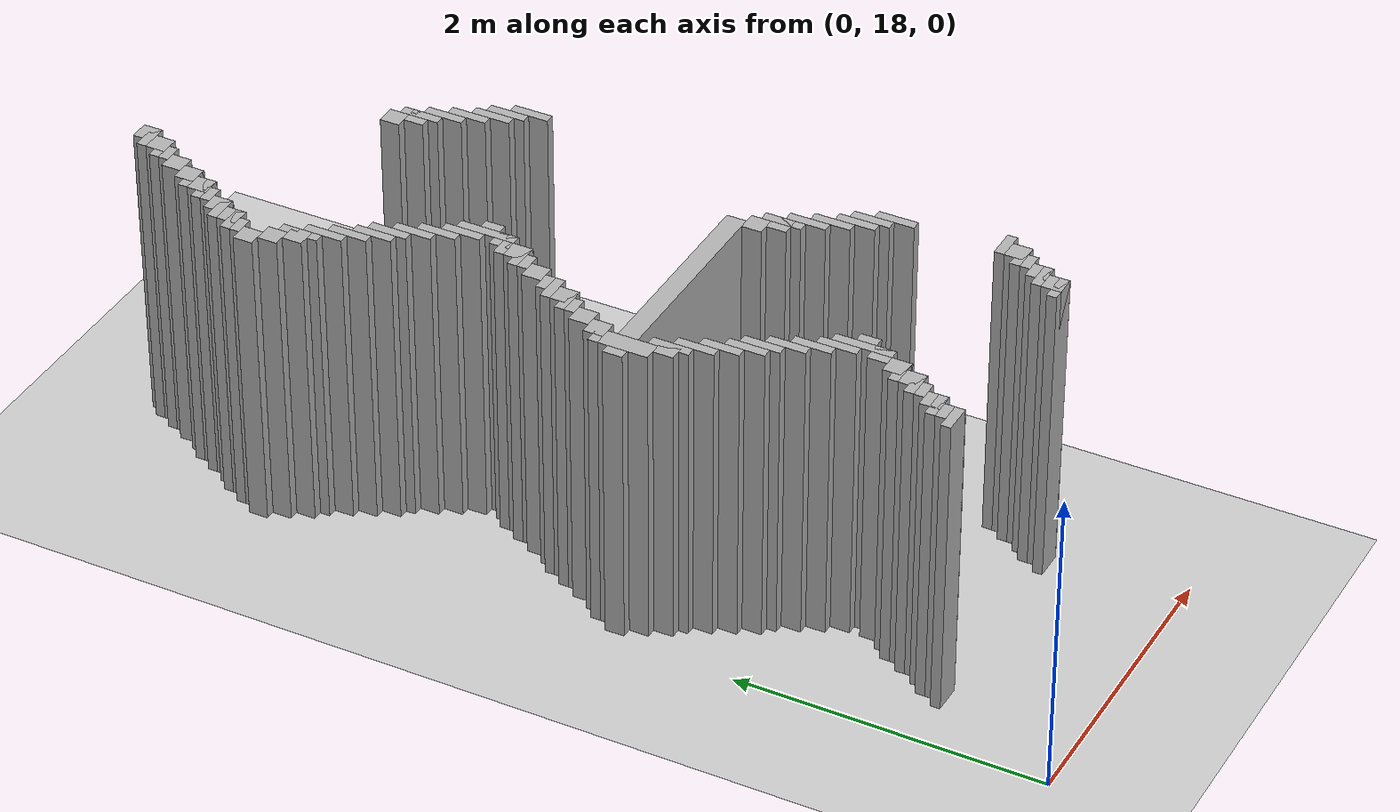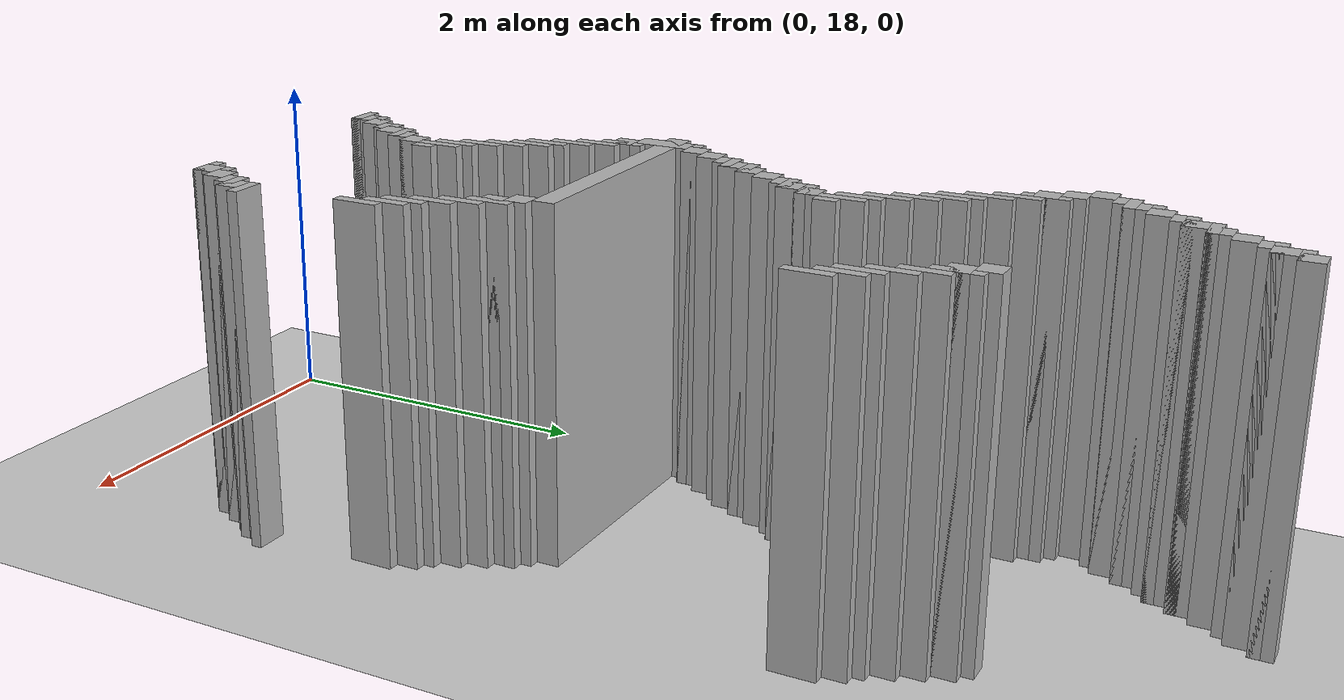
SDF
<sdf version="1.6">
 <world name="slam_world">
  <model name="ground_plane">
   <static>true</static>
   <link name="link">
    <collision name="collision">
     <geometry><plane><normal>0 0 1</normal><size>100 100</size></plane></geometry>
    </collision>
    <visual name="visual">
     <geometry><plane><normal>0 0 1</normal><size>100 100</size></plane></geometry>
     <material>
      <ambient>0.8 0.8 0.8 1</ambient>
      <diffuse>0.8 0.8 0.8 1</diffuse>
      <specular>0.8 0.8 0.8 1</specular>
     </material>
    </visual>
   </link>
  </model>
  <model name="wall_2">
   <static>true</static>
   <pose>0.7659574468085106 24.319148936170212 1.0 0 0 0</pose>
   <link name="link">
    <collision name="collision">
     <geometry><box><size>0.1276595744680851 0.1276595744680851 2.0</size></box></geometry>
    </collision>
    <visual name="visual">
     <geometry><box><size>0.1276595744680851 0.1276595744680851 2.0</size></box></geometry>
     <material><ambient>0.5 0.5 0.5 1</ambient><diffuse>0.7 0.7 0.7 1</diffuse></material>
    </visual>
   </link>
  </model>
  <model name="wall_7">
   <static>true</static>
   <pose>0.7340425531914893 24.28723404255319 1.0 0 0 0</pose>
   <link name="link">
    <collision name="collision">
     <geometry><box><size>0.19148936170212766 0.06382978723404255 2.0</size></box></geometry>
    </collision>
    <visual name="visual">
     <geometry><box><size>0.19148936170212766 0.06382978723404255 2.0</size></box></geometry>
     <material><ambient>0.5 0.5 0.5 1</ambient><diffuse>0.7 0.7 0.7 1</diffuse></material>
    </visual>
   </link>
  </model>
  <model name="wall_12">
   <static>true</static>
   <pose>0.702127659574468 24.191489361702125 1.0 0 0 0</pose>
   <link name="link">
    <collision name="collision">
     <geometry><box><size>0.1276595744680851 0.1276595744680851 2.0</size></box></geometry>
    </collision>
    <visual name="visual">
     <geometry><box><size>0.1276595744680851 0.1276595744680851 2.0</size></box></geometry>
     <material><ambient>0.5 0.5 0.5 1</ambient><diffuse>0.7 0.7 0.7 1</diffuse></material>
    </visual>
   </link>
  </model>
  <model name="wall_17">
   <static>true</static>
   <pose>0.6702127659574467 24.159574468085104 1.0 0 0 0</pose>
   <link name="link">
    <collision name="collision">
     <geometry><box><size>0.19148936170212766 0.06382978723404255 2.0</size></box></geometry>
    </collision>
    <visual name="visual">
     <geometry><box><size>0.19148936170212766 0.06382978723404255 2.0</size></box></geometry>
     <material><ambient>0.5 0.5 0.5 1</ambient><diffuse>0.7 0.7 0.7 1</diffuse></material>
    </visual>
   </link>
  </model>
  <model name="wall_22">
   <static>true</static>
   <pose>0.6382978723404255 24.095744680851062 1.0 0 0 0</pose>
   <link name="link">
    <collision name="collision">
     <geometry><box><size>0.1276595744680851 0.06382978723404255 2.0</size></box></geometry>
    </collision>
    <visual name="visual">
     <geometry><box><size>0.1276595744680851 0.06382978723404255 2.0</size></box></geometry>
     <material><ambient>0.5 0.5 0.5 1</ambient><diffuse>0.7 0.7 0.7 1</diffuse></material>
    </visual>
   </link>
  </model>
  <model name="wall_26">
   <static>true</static>
   <pose>0.5744680851063829 23.999999999999996 1.0 0 0 0</pose>
   <link name="link">
    <collision name="collision">
     <geometry><box><size>0.1276595744680851 0.1276595744680851 2.0</size></box></geometry>
    </collision>
    <visual name="visual">
     <geometry><box><size>0.1276595744680851 0.1276595744680851 2.0</size></box></geometry>
     <material><ambient>0.5 0.5 0.5 1</ambient><diffuse>0.7 0.7 0.7 1</diffuse></material>
    </visual>
   </link>
  </model>
  <model name="wall_31">
   <static>true</static>
   <pose>0.5106382978723404 23.872340425531913 1.0 0 0 0</pose>
   <link name="link">
    <collision name="collision">
     <geometry><box><size>0.1276595744680851 0.1276595744680851 2.0</size></box></geometry>
    </collision>
    <visual name="visual">
     <geometry><box><size>0.1276595744680851 0.1276595744680851 2.0</size></box></geometry>
     <material><ambient>0.5 0.5 0.5 1</ambient><diffuse>0.7 0.7 0.7 1</diffuse></material>
    </visual>
   </link>
  </model>
  <model name="wall_36">
   <static>true</static>
   <pose>0.4787234042553191 23.840425531914892 1.0 0 0 0</pose>
   <link name="link">
    <collision name="collision">
     <geometry><box><size>0.19148936170212766 0.06382978723404255 2.0</size></box></geometry>
    </collision>
    <visual name="visual">
     <geometry><box><size>0.19148936170212766 0.06382978723404255 2.0</size></box></geometry>
     <material><ambient>0.5 0.5 0.5 1</ambient><diffuse>0.7 0.7 0.7 1</diffuse></material>
    </visual>
   </link>
  </model>
  <model name="wall_41">
   <static>true</static>
   <pose>0.44680851063829785 23.744680851063826 1.0 0 0 0</pose>
   <link name="link">
    <collision name="collision">
     <geometry><box><size>0.1276595744680851 0.1276595744680851 2.0</size></box></geometry>
    </collision>
    <visual name="visual">
     <geometry><box><size>0.1276595744680851 0.1276595744680851 2.0</size></box></geometry>
     <material><ambient>0.5 0.5 0.5 1</ambient><diffuse>0.7 0.7 0.7 1</diffuse></material>
    </visual>
   </link>
  </model>
  <model name="wall_45">
   <static>true</static>
   <pose>0.4148936170212766 23.712765957446805 1.0 0 0 0</pose>
   <link name="link">
    <collision name="collision">
     <geometry><box><size>0.19148936170212766 0.06382978723404255 2.0</size></box></geometry>
    </collision>
    <visual name="visual">
     <geometry><box><size>0.19148936170212766 0.06382978723404255 2.0</size></box></geometry>
     <material><ambient>0.5 0.5 0.5 1</ambient><diffuse>0.7 0.7 0.7 1</diffuse></material>
    </visual>
   </link>
  </model>
  <model name="wall_50">
   <static>true</static>
   <pose>0.3829787234042553 23.648936170212764 1.0 0 0 0</pose>
   <link name="link">
    <collision name="collision">
     <geometry><box><size>0.1276595744680851 0.06382978723404255 2.0</size></box></geometry>
    </collision>
    <visual name="visual">
     <geometry><box><size>0.1276595744680851 0.06382978723404255 2.0</size></box></geometry>
     <material><ambient>0.5 0.5 0.5 1</ambient><diffuse>0.7 0.7 0.7 1</diffuse></material>
    </visual>
   </link>
  </model>
  <model name="wall_54">
   <static>true</static>
   <pose>0.3191489361702127 23.5531914893617 1.0 0 0 0</pose>
   <link name="link">
    <collision name="collision">
     <geometry><box><size>0.1276595744680851 0.1276595744680851 2.0</size></box></geometry>
    </collision>
    <visual name="visual">
     <geometry><box><size>0.1276595744680851 0.1276595744680851 2.0</size></box></geometry>
     <material><ambient>0.5 0.5 0.5 1</ambient><diffuse>0.7 0.7 0.7 1</diffuse></material>
    </visual>
   </link>
  </model>
  <model name="wall_59">
   <static>true</static>
   <pose>0.28723404255319146 23.52127659574468 1.0 0 0 0</pose>
   <link name="link">
    <collision name="collision">
     <geometry><box><size>0.19148936170212766 0.06382978723404255 2.0</size></box></geometry>
    </collision>
    <visual name="visual">
     <geometry><box><size>0.19148936170212766 0.06382978723404255 2.0</size></box></geometry>
     <material><ambient>0.5 0.5 0.5 1</ambient><diffuse>0.7 0.7 0.7 1</diffuse></material>
    </visual>
   </link>
  </model>
  <model name="wall_64">
   <static>true</static>
   <pose>0.2553191489361702 23.425531914893615 1.0 0 0 0</pose>
   <link name="link">
    <collision name="collision">
     <geometry><box><size>0.1276595744680851 0.1276595744680851 2.0</size></box></geometry>
    </collision>
    <visual name="visual">
     <geometry><box><size>0.1276595744680851 0.1276595744680851 2.0</size></box></geometry>
     <material><ambient>0.5 0.5 0.5 1</ambient><diffuse>0.7 0.7 0.7 1</diffuse></material>
    </visual>
   </link>
  </model>
  <model name="wall_68">
   <static>true</static>
   <pose>0.22340425531914893 23.393617021276594 1.0 0 0 0</pose>
   <link name="link">
    <collision name="collision">
     <geometry><box><size>0.19148936170212766 0.06382978723404255 2.0</size></box></geometry>
    </collision>
    <visual name="visual">
     <geometry><box><size>0.19148936170212766 0.06382978723404255 2.0</size></box></geometry>
     <material><ambient>0.5 0.5 0.5 1</ambient><diffuse>0.7 0.7 0.7 1</diffuse></material>
    </visual>
   </link>
  </model>
  <model name="wall_73">
   <static>true</static>
   <pose>0.19148936170212766 23.329787234042552 1.0 0 0 0</pose>
   <link name="link">
    <collision name="collision">
     <geometry><box><size>0.1276595744680851 0.06382978723404255 2.0</size></box></geometry>
    </collision>
    <visual name="visual">
     <geometry><box><size>0.1276595744680851 0.06382978723404255 2.0</size></box></geometry>
     <material><ambient>0.5 0.5 0.5 1</ambient><diffuse>0.7 0.7 0.7 1</diffuse></material>
    </visual>
   </link>
  </model>
  <model name="wall_77">
   <static>true</static>
   <pose>0.1276595744680851 23.234042553191486 1.0 0 0 0</pose>
   <link name="link">
    <collision name="collision">
     <geometry><box><size>0.1276595744680851 0.1276595744680851 2.0</size></box></geometry>
    </collision>
    <visual name="visual">
     <geometry><box><size>0.1276595744680851 0.1276595744680851 2.0</size></box></geometry>
     <material><ambient>0.5 0.5 0.5 1</ambient><diffuse>0.7 0.7 0.7 1</diffuse></material>
    </visual>
   </link>
  </model>
  <model name="wall_84">
   <static>true</static>
   <pose>0.19148936170212766 23.106382978723403 1.0 0 0 0</pose>
   <link name="link">
    <collision name="collision">
     <geometry><box><size>0.1276595744680851 0.1276595744680851 2.0</size></box></geometry>
    </collision>
    <visual name="visual">
     <geometry><box><size>0.1276595744680851 0.1276595744680851 2.0</size></box></geometry>
     <material><ambient>0.5 0.5 0.5 1</ambient><diffuse>0.7 0.7 0.7 1</diffuse></material>
    </visual>
   </link>
  </model>
  <model name="wall_85">
   <static>true</static>
   <pose>1.5957446808510638 23.106382978723403 1.0 0 0 0</pose>
   <link name="link">
    <collision name="collision">
     <geometry><box><size>0.1276595744680851 0.1276595744680851 2.0</size></box></geometry>
    </collision>
    <visual name="visual">
     <geometry><box><size>0.1276595744680851 0.1276595744680851 2.0</size></box></geometry>
     <material><ambient>0.5 0.5 0.5 1</ambient><diffuse>0.7 0.7 0.7 1</diffuse></material>
    </visual>
   </link>
  </model>
  <model name="wall_94">
   <static>true</static>
   <pose>0.28723404255319146 22.978723404255316 1.0 0 0 0</pose>
   <link name="link">
    <collision name="collision">
     <geometry><box><size>0.06382978723404255 0.2553191489361702 2.0</size></box></geometry>
    </collision>
    <visual name="visual">
     <geometry><box><size>0.06382978723404255 0.2553191489361702 2.0</size></box></geometry>
     <material><ambient>0.5 0.5 0.5 1</ambient><diffuse>0.7 0.7 0.7 1</diffuse></material>
    </visual>
   </link>
  </model>
  <model name="wall_95">
   <static>true</static>
   <pose>1.6914893617021276 22.978723404255316 1.0 0 0 0</pose>
   <link name="link">
    <collision name="collision">
     <geometry><box><size>0.06382978723404255 0.2553191489361702 2.0</size></box></geometry>
    </collision>
    <visual name="visual">
     <geometry><box><size>0.06382978723404255 0.2553191489361702 2.0</size></box></geometry>
     <material><ambient>0.5 0.5 0.5 1</ambient><diffuse>0.7 0.7 0.7 1</diffuse></material>
    </visual>
   </link>
  </model>
  <model name="wall_104">
   <static>true</static>
   <pose>0.2553191489361702 22.978723404255316 1.0 0 0 0</pose>
   <link name="link">
    <collision name="collision">
     <geometry><box><size>0.1276595744680851 0.1276595744680851 2.0</size></box></geometry>
    </collision>
    <visual name="visual">
     <geometry><box><size>0.1276595744680851 0.1276595744680851 2.0</size></box></geometry>
     <material><ambient>0.5 0.5 0.5 1</ambient><diffuse>0.7 0.7 0.7 1</diffuse></material>
    </visual>
   </link>
  </model>
  <model name="wall_105">
   <static>true</static>
   <pose>1.6595744680851063 22.978723404255316 1.0 0 0 0</pose>
   <link name="link">
    <collision name="collision">
     <geometry><box><size>0.1276595744680851 0.1276595744680851 2.0</size></box></geometry>
    </collision>
    <visual name="visual">
     <geometry><box><size>0.1276595744680851 0.1276595744680851 2.0</size></box></geometry>
     <material><ambient>0.5 0.5 0.5 1</ambient><diffuse>0.7 0.7 0.7 1</diffuse></material>
    </visual>
   </link>
  </model>
  <model name="wall_114">
   <static>true</static>
   <pose>0.351063829787234 22.851063829787233 1.0 0 0 0</pose>
   <link name="link">
    <collision name="collision">
     <geometry><box><size>0.06382978723404255 0.2553191489361702 2.0</size></box></geometry>
    </collision>
    <visual name="visual">
     <geometry><box><size>0.06382978723404255 0.2553191489361702 2.0</size></box></geometry>
     <material><ambient>0.5 0.5 0.5 1</ambient><diffuse>0.7 0.7 0.7 1</diffuse></material>
    </visual>
   </link>
  </model>
  <model name="wall_115">
   <static>true</static>
   <pose>1.7553191489361701 22.851063829787233 1.0 0 0 0</pose>
   <link name="link">
    <collision name="collision">
     <geometry><box><size>0.06382978723404255 0.2553191489361702 2.0</size></box></geometry>
    </collision>
    <visual name="visual">
     <geometry><box><size>0.06382978723404255 0.2553191489361702 2.0</size></box></geometry>
     <material><ambient>0.5 0.5 0.5 1</ambient><diffuse>0.7 0.7 0.7 1</diffuse></material>
    </visual>
   </link>
  </model>
  <model name="wall_128">
   <static>true</static>
   <pose>0.4148936170212766 22.723404255319146 1.0 0 0 0</pose>
   <link name="link">
    <collision name="collision">
     <geometry><box><size>0.06382978723404255 0.2553191489361702 2.0</size></box></geometry>
    </collision>
    <visual name="visual">
     <geometry><box><size>0.06382978723404255 0.2553191489361702 2.0</size></box></geometry>
     <material><ambient>0.5 0.5 0.5 1</ambient><diffuse>0.7 0.7 0.7 1</diffuse></material>
    </visual>
   </link>
  </model>
  <model name="wall_129">
   <static>true</static>
   <pose>1.8191489361702127 22.723404255319146 1.0 0 0 0</pose>
   <link name="link">
    <collision name="collision">
     <geometry><box><size>0.06382978723404255 0.2553191489361702 2.0</size></box></geometry>
    </collision>
    <visual name="visual">
     <geometry><box><size>0.06382978723404255 0.2553191489361702 2.0</size></box></geometry>
     <material><ambient>0.5 0.5 0.5 1</ambient><diffuse>0.7 0.7 0.7 1</diffuse></material>
    </visual>
   </link>
  </model>
  <model name="wall_138">
   <static>true</static>
   <pose>0.4787234042553191 22.595744680851062 1.0 0 0 0</pose>
   <link name="link">
    <collision name="collision">
     <geometry><box><size>0.06382978723404255 0.2553191489361702 2.0</size></box></geometry>
    </collision>
    <visual name="visual">
     <geometry><box><size>0.06382978723404255 0.2553191489361702 2.0</size></box></geometry>
     <material><ambient>0.5 0.5 0.5 1</ambient><diffuse>0.7 0.7 0.7 1</diffuse></material>
    </visual>
   </link>
  </model>
  <model name="wall_139">
   <static>true</static>
   <pose>1.8829787234042552 22.595744680851062 1.0 0 0 0</pose>
   <link name="link">
    <collision name="collision">
     <geometry><box><size>0.06382978723404255 0.2553191489361702 2.0</size></box></geometry>
    </collision>
    <visual name="visual">
     <geometry><box><size>0.06382978723404255 0.2553191489361702 2.0</size></box></geometry>
     <material><ambient>0.5 0.5 0.5 1</ambient><diffuse>0.7 0.7 0.7 1</diffuse></material>
    </visual>
   </link>
  </model>
  <model name="wall_148">
   <static>true</static>
   <pose>0.5425531914893617 22.53191489361702 1.0 0 0 0</pose>
   <link name="link">
    <collision name="collision">
     <geometry><box><size>0.06382978723404255 0.2553191489361702 2.0</size></box></geometry>
    </collision>
    <visual name="visual">
     <geometry><box><size>0.06382978723404255 0.2553191489361702 2.0</size></box></geometry>
     <material><ambient>0.5 0.5 0.5 1</ambient><diffuse>0.7 0.7 0.7 1</diffuse></material>
    </visual>
   </link>
  </model>
  <model name="wall_149">
   <static>true</static>
   <pose>1.9468085106382977 22.53191489361702 1.0 0 0 0</pose>
   <link name="link">
    <collision name="collision">
     <geometry><box><size>0.06382978723404255 0.2553191489361702 2.0</size></box></geometry>
    </collision>
    <visual name="visual">
     <geometry><box><size>0.06382978723404255 0.2553191489361702 2.0</size></box></geometry>
     <material><ambient>0.5 0.5 0.5 1</ambient><diffuse>0.7 0.7 0.7 1</diffuse></material>
    </visual>
   </link>
  </model>
  <model name="wall_162">
   <static>true</static>
   <pose>0.6063829787234042 22.404255319148934 1.0 0 0 0</pose>
   <link name="link">
    <collision name="collision">
     <geometry><box><size>0.06382978723404255 0.2553191489361702 2.0</size></box></geometry>
    </collision>
    <visual name="visual">
     <geometry><box><size>0.06382978723404255 0.2553191489361702 2.0</size></box></geometry>
     <material><ambient>0.5 0.5 0.5 1</ambient><diffuse>0.7 0.7 0.7 1</diffuse></material>
    </visual>
   </link>
  </model>
  <model name="wall_163">
   <static>true</static>
   <pose>2.0106382978723403 22.404255319148934 1.0 0 0 0</pose>
   <link name="link">
    <collision name="collision">
     <geometry><box><size>0.06382978723404255 0.2553191489361702 2.0</size></box></geometry>
    </collision>
    <visual name="visual">
     <geometry><box><size>0.06382978723404255 0.2553191489361702 2.0</size></box></geometry>
     <material><ambient>0.5 0.5 0.5 1</ambient><diffuse>0.7 0.7 0.7 1</diffuse></material>
    </visual>
   </link>
  </model>
  <model name="wall_176">
   <static>true</static>
   <pose>0.6702127659574467 22.27659574468085 1.0 0 0 0</pose>
   <link name="link">
    <collision name="collision">
     <geometry><box><size>0.06382978723404255 0.2553191489361702 2.0</size></box></geometry>
    </collision>
    <visual name="visual">
     <geometry><box><size>0.06382978723404255 0.2553191489361702 2.0</size></box></geometry>
     <material><ambient>0.5 0.5 0.5 1</ambient><diffuse>0.7 0.7 0.7 1</diffuse></material>
    </visual>
   </link>
  </model>
  <model name="wall_190">
   <static>true</static>
   <pose>0.7340425531914893 22.148936170212764 1.0 0 0 0</pose>
   <link name="link">
    <collision name="collision">
     <geometry><box><size>0.06382978723404255 0.2553191489361702 2.0</size></box></geometry>
    </collision>
    <visual name="visual">
     <geometry><box><size>0.06382978723404255 0.2553191489361702 2.0</size></box></geometry>
     <material><ambient>0.5 0.5 0.5 1</ambient><diffuse>0.7 0.7 0.7 1</diffuse></material>
    </visual>
   </link>
  </model>
  <model name="wall_200">
   <static>true</static>
   <pose>0.7978723404255319 22.02127659574468 1.0 0 0 0</pose>
   <link name="link">
    <collision name="collision">
     <geometry><box><size>0.06382978723404255 0.3829787234042553 2.0</size></box></geometry>
    </collision>
    <visual name="visual">
     <geometry><box><size>0.06382978723404255 0.3829787234042553 2.0</size></box></geometry>
     <material><ambient>0.5 0.5 0.5 1</ambient><diffuse>0.7 0.7 0.7 1</diffuse></material>
    </visual>
   </link>
  </model>
  <model name="wall_213">
   <static>true</static>
   <pose>0.8617021276595744 22.02127659574468 1.0 0 0 0</pose>
   <link name="link">
    <collision name="collision">
     <geometry><box><size>0.06382978723404255 0.1276595744680851 2.0</size></box></geometry>
    </collision>
    <visual name="visual">
     <geometry><box><size>0.06382978723404255 0.1276595744680851 2.0</size></box></geometry>
     <material><ambient>0.5 0.5 0.5 1</ambient><diffuse>0.7 0.7 0.7 1</diffuse></material>
    </visual>
   </link>
  </model>
  <model name="wall_226">
   <static>true</static>
   <pose>0.7659574468085106 21.893617021276594 1.0 0 0 0</pose>
   <link name="link">
    <collision name="collision">
     <geometry><box><size>0.1276595744680851 0.1276595744680851 2.0</size></box></geometry>
    </collision>
    <visual name="visual">
     <geometry><box><size>0.1276595744680851 0.1276595744680851 2.0</size></box></geometry>
     <material><ambient>0.5 0.5 0.5 1</ambient><diffuse>0.7 0.7 0.7 1</diffuse></material>
    </visual>
   </link>
  </model>
  <model name="wall_233">
   <static>true</static>
   <pose>0.7340425531914893 21.861702127659573 1.0 0 0 0</pose>
   <link name="link">
    <collision name="collision">
     <geometry><box><size>0.19148936170212766 0.06382978723404255 2.0</size></box></geometry>
    </collision>
    <visual name="visual">
     <geometry><box><size>0.19148936170212766 0.06382978723404255 2.0</size></box></geometry>
     <material><ambient>0.5 0.5 0.5 1</ambient><diffuse>0.7 0.7 0.7 1</diffuse></material>
    </visual>
   </link>
  </model>
  <model name="wall_241">
   <static>true</static>
   <pose>0.702127659574468 21.76595744680851 1.0 0 0 0</pose>
   <link name="link">
    <collision name="collision">
     <geometry><box><size>0.1276595744680851 0.1276595744680851 2.0</size></box></geometry>
    </collision>
    <visual name="visual">
     <geometry><box><size>0.1276595744680851 0.1276595744680851 2.0</size></box></geometry>
     <material><ambient>0.5 0.5 0.5 1</ambient><diffuse>0.7 0.7 0.7 1</diffuse></material>
    </visual>
   </link>
  </model>
  <model name="wall_247">
   <static>true</static>
   <pose>0.6702127659574467 21.734042553191486 1.0 0 0 0</pose>
   <link name="link">
    <collision name="collision">
     <geometry><box><size>0.19148936170212766 0.06382978723404255 2.0</size></box></geometry>
    </collision>
    <visual name="visual">
     <geometry><box><size>0.19148936170212766 0.06382978723404255 2.0</size></box></geometry>
     <material><ambient>0.5 0.5 0.5 1</ambient><diffuse>0.7 0.7 0.7 1</diffuse></material>
    </visual>
   </link>
  </model>
  <model name="wall_255">
   <static>true</static>
   <pose>0.6382978723404255 21.670212765957444 1.0 0 0 0</pose>
   <link name="link">
    <collision name="collision">
     <geometry><box><size>0.1276595744680851 0.06382978723404255 2.0</size></box></geometry>
    </collision>
    <visual name="visual">
     <geometry><box><size>0.1276595744680851 0.06382978723404255 2.0</size></box></geometry>
     <material><ambient>0.5 0.5 0.5 1</ambient><diffuse>0.7 0.7 0.7 1</diffuse></material>
    </visual>
   </link>
  </model>
  <model name="wall_261">
   <static>true</static>
   <pose>0.5744680851063829 21.574468085106382 1.0 0 0 0</pose>
   <link name="link">
    <collision name="collision">
     <geometry><box><size>0.1276595744680851 0.1276595744680851 2.0</size></box></geometry>
    </collision>
    <visual name="visual">
     <geometry><box><size>0.1276595744680851 0.1276595744680851 2.0</size></box></geometry>
     <material><ambient>0.5 0.5 0.5 1</ambient><diffuse>0.7 0.7 0.7 1</diffuse></material>
    </visual>
   </link>
  </model>
  <model name="wall_269">
   <static>true</static>
   <pose>0.5106382978723404 21.446808510638295 1.0 0 0 0</pose>
   <link name="link">
    <collision name="collision">
     <geometry><box><size>0.1276595744680851 0.1276595744680851 2.0</size></box></geometry>
    </collision>
    <visual name="visual">
     <geometry><box><size>0.1276595744680851 0.1276595744680851 2.0</size></box></geometry>
     <material><ambient>0.5 0.5 0.5 1</ambient><diffuse>0.7 0.7 0.7 1</diffuse></material>
    </visual>
   </link>
  </model>
  <model name="wall_277">
   <static>true</static>
   <pose>0.4787234042553191 21.414893617021274 1.0 0 0 0</pose>
   <link name="link">
    <collision name="collision">
     <geometry><box><size>0.19148936170212766 0.06382978723404255 2.0</size></box></geometry>
    </collision>
    <visual name="visual">
     <geometry><box><size>0.19148936170212766 0.06382978723404255 2.0</size></box></geometry>
     <material><ambient>0.5 0.5 0.5 1</ambient><diffuse>0.7 0.7 0.7 1</diffuse></material>
    </visual>
   </link>
  </model>
  <model name="wall_285">
   <static>true</static>
   <pose>0.44680851063829785 21.319148936170212 1.0 0 0 0</pose>
   <link name="link">
    <collision name="collision">
     <geometry><box><size>0.1276595744680851 0.1276595744680851 2.0</size></box></geometry>
    </collision>
    <visual name="visual">
     <geometry><box><size>0.1276595744680851 0.1276595744680851 2.0</size></box></geometry>
     <material><ambient>0.5 0.5 0.5 1</ambient><diffuse>0.7 0.7 0.7 1</diffuse></material>
    </visual>
   </link>
  </model>
  <model name="wall_291">
   <static>true</static>
   <pose>0.4148936170212766 21.28723404255319 1.0 0 0 0</pose>
   <link name="link">
    <collision name="collision">
     <geometry><box><size>0.19148936170212766 0.06382978723404255 2.0</size></box></geometry>
    </collision>
    <visual name="visual">
     <geometry><box><size>0.19148936170212766 0.06382978723404255 2.0</size></box></geometry>
     <material><ambient>0.5 0.5 0.5 1</ambient><diffuse>0.7 0.7 0.7 1</diffuse></material>
    </visual>
   </link>
  </model>
  <model name="wall_299">
   <static>true</static>
   <pose>0.3829787234042553 21.223404255319146 1.0 0 0 0</pose>
   <link name="link">
    <collision name="collision">
     <geometry><box><size>0.1276595744680851 0.06382978723404255 2.0</size></box></geometry>
    </collision>
    <visual name="visual">
     <geometry><box><size>0.1276595744680851 0.06382978723404255 2.0</size></box></geometry>
     <material><ambient>0.5 0.5 0.5 1</ambient><diffuse>0.7 0.7 0.7 1</diffuse></material>
    </visual>
   </link>
  </model>
  <model name="wall_305">
   <static>true</static>
   <pose>0.3191489361702127 21.127659574468083 1.0 0 0 0</pose>
   <link name="link">
    <collision name="collision">
     <geometry><box><size>0.1276595744680851 0.1276595744680851 2.0</size></box></geometry>
    </collision>
    <visual name="visual">
     <geometry><box><size>0.1276595744680851 0.1276595744680851 2.0</size></box></geometry>
     <material><ambient>0.5 0.5 0.5 1</ambient><diffuse>0.7 0.7 0.7 1</diffuse></material>
    </visual>
   </link>
  </model>
  <model name="wall_313">
   <static>true</static>
   <pose>0.2553191489361702 21.0 1.0 0 0 0</pose>
   <link name="link">
    <collision name="collision">
     <geometry><box><size>0.1276595744680851 0.1276595744680851 2.0</size></box></geometry>
    </collision>
    <visual name="visual">
     <geometry><box><size>0.1276595744680851 0.1276595744680851 2.0</size></box></geometry>
     <material><ambient>0.5 0.5 0.5 1</ambient><diffuse>0.7 0.7 0.7 1</diffuse></material>
    </visual>
   </link>
  </model>
  <model name="wall_321">
   <static>true</static>
   <pose>0.22340425531914893 20.968085106382976 1.0 0 0 0</pose>
   <link name="link">
    <collision name="collision">
     <geometry><box><size>0.19148936170212766 0.06382978723404255 2.0</size></box></geometry>
    </collision>
    <visual name="visual">
     <geometry><box><size>0.19148936170212766 0.06382978723404255 2.0</size></box></geometry>
     <material><ambient>0.5 0.5 0.5 1</ambient><diffuse>0.7 0.7 0.7 1</diffuse></material>
    </visual>
   </link>
  </model>
  <model name="wall_328">
   <static>true</static>
   <pose>0.19148936170212766 20.77659574468085 1.0 0 0 0</pose>
   <link name="link">
    <collision name="collision">
     <geometry><box><size>0.1276595744680851 0.3191489361702127 2.0</size></box></geometry>
    </collision>
    <visual name="visual">
     <geometry><box><size>0.1276595744680851 0.3191489361702127 2.0</size></box></geometry>
     <material><ambient>0.5 0.5 0.5 1</ambient><diffuse>0.7 0.7 0.7 1</diffuse></material>
    </visual>
   </link>
  </model>
  <model name="wall_334">
   <static>true</static>
   <pose>0.8297872340425532 20.80851063829787 1.0 0 0 0</pose>
   <link name="link">
    <collision name="collision">
     <geometry><box><size>1.5319148936170213 0.1276595744680851 2.0</size></box></geometry>
    </collision>
    <visual name="visual">
     <geometry><box><size>1.5319148936170213 0.1276595744680851 2.0</size></box></geometry>
     <material><ambient>0.5 0.5 0.5 1</ambient><diffuse>0.7 0.7 0.7 1</diffuse></material>
    </visual>
   </link>
  </model>
  <model name="wall_344">
   <static>true</static>
   <pose>1.5957446808510638 20.680851063829785 1.0 0 0 0</pose>
   <link name="link">
    <collision name="collision">
     <geometry><box><size>0.1276595744680851 0.1276595744680851 2.0</size></box></geometry>
    </collision>
    <visual name="visual">
     <geometry><box><size>0.1276595744680851 0.1276595744680851 2.0</size></box></geometry>
     <material><ambient>0.5 0.5 0.5 1</ambient><diffuse>0.7 0.7 0.7 1</diffuse></material>
    </visual>
   </link>
  </model>
  <model name="wall_351">
   <static>true</static>
   <pose>0.28723404255319146 20.5531914893617 1.0 0 0 0</pose>
   <link name="link">
    <collision name="collision">
     <geometry><box><size>0.06382978723404255 0.2553191489361702 2.0</size></box></geometry>
    </collision>
    <visual name="visual">
     <geometry><box><size>0.06382978723404255 0.2553191489361702 2.0</size></box></geometry>
     <material><ambient>0.5 0.5 0.5 1</ambient><diffuse>0.7 0.7 0.7 1</diffuse></material>
    </visual>
   </link>
  </model>
  <model name="wall_352">
   <static>true</static>
   <pose>1.6914893617021276 20.5531914893617 1.0 0 0 0</pose>
   <link name="link">
    <collision name="collision">
     <geometry><box><size>0.06382978723404255 0.2553191489361702 2.0</size></box></geometry>
    </collision>
    <visual name="visual">
     <geometry><box><size>0.06382978723404255 0.2553191489361702 2.0</size></box></geometry>
     <material><ambient>0.5 0.5 0.5 1</ambient><diffuse>0.7 0.7 0.7 1</diffuse></material>
    </visual>
   </link>
  </model>
  <model name="wall_359">
   <static>true</static>
   <pose>0.2553191489361702 20.5531914893617 1.0 0 0 0</pose>
   <link name="link">
    <collision name="collision">
     <geometry><box><size>0.1276595744680851 0.1276595744680851 2.0</size></box></geometry>
    </collision>
    <visual name="visual">
     <geometry><box><size>0.1276595744680851 0.1276595744680851 2.0</size></box></geometry>
     <material><ambient>0.5 0.5 0.5 1</ambient><diffuse>0.7 0.7 0.7 1</diffuse></material>
    </visual>
   </link>
  </model>
  <model name="wall_360">
   <static>true</static>
   <pose>1.6595744680851063 20.5531914893617 1.0 0 0 0</pose>
   <link name="link">
    <collision name="collision">
     <geometry><box><size>0.1276595744680851 0.1276595744680851 2.0</size></box></geometry>
    </collision>
    <visual name="visual">
     <geometry><box><size>0.1276595744680851 0.1276595744680851 2.0</size></box></geometry>
     <material><ambient>0.5 0.5 0.5 1</ambient><diffuse>0.7 0.7 0.7 1</diffuse></material>
    </visual>
   </link>
  </model>
  <model name="wall_368">
   <static>true</static>
   <pose>0.351063829787234 20.425531914893615 1.0 0 0 0</pose>
   <link name="link">
    <collision name="collision">
     <geometry><box><size>0.06382978723404255 0.2553191489361702 2.0</size></box></geometry>
    </collision>
    <visual name="visual">
     <geometry><box><size>0.06382978723404255 0.2553191489361702 2.0</size></box></geometry>
     <material><ambient>0.5 0.5 0.5 1</ambient><diffuse>0.7 0.7 0.7 1</diffuse></material>
    </visual>
   </link>
  </model>
  <model name="wall_369">
   <static>true</static>
   <pose>1.7553191489361701 20.425531914893615 1.0 0 0 0</pose>
   <link name="link">
    <collision name="collision">
     <geometry><box><size>0.06382978723404255 0.2553191489361702 2.0</size></box></geometry>
    </collision>
    <visual name="visual">
     <geometry><box><size>0.06382978723404255 0.2553191489361702 2.0</size></box></geometry>
     <material><ambient>0.5 0.5 0.5 1</ambient><diffuse>0.7 0.7 0.7 1</diffuse></material>
    </visual>
   </link>
  </model>
  <model name="wall_380">
   <static>true</static>
   <pose>0.4148936170212766 20.29787234042553 1.0 0 0 0</pose>
   <link name="link">
    <collision name="collision">
     <geometry><box><size>0.06382978723404255 0.2553191489361702 2.0</size></box></geometry>
    </collision>
    <visual name="visual">
     <geometry><box><size>0.06382978723404255 0.2553191489361702 2.0</size></box></geometry>
     <material><ambient>0.5 0.5 0.5 1</ambient><diffuse>0.7 0.7 0.7 1</diffuse></material>
    </visual>
   </link>
  </model>
  <model name="wall_381">
   <static>true</static>
   <pose>1.8191489361702127 20.29787234042553 1.0 0 0 0</pose>
   <link name="link">
    <collision name="collision">
     <geometry><box><size>0.06382978723404255 0.2553191489361702 2.0</size></box></geometry>
    </collision>
    <visual name="visual">
     <geometry><box><size>0.06382978723404255 0.2553191489361702 2.0</size></box></geometry>
     <material><ambient>0.5 0.5 0.5 1</ambient><diffuse>0.7 0.7 0.7 1</diffuse></material>
    </visual>
   </link>
  </model>
  <model name="wall_389">
   <static>true</static>
   <pose>0.4787234042553191 20.170212765957444 1.0 0 0 0</pose>
   <link name="link">
    <collision name="collision">
     <geometry><box><size>0.06382978723404255 0.2553191489361702 2.0</size></box></geometry>
    </collision>
    <visual name="visual">
     <geometry><box><size>0.06382978723404255 0.2553191489361702 2.0</size></box></geometry>
     <material><ambient>0.5 0.5 0.5 1</ambient><diffuse>0.7 0.7 0.7 1</diffuse></material>
    </visual>
   </link>
  </model>
  <model name="wall_390">
   <static>true</static>
   <pose>1.8829787234042552 20.170212765957444 1.0 0 0 0</pose>
   <link name="link">
    <collision name="collision">
     <geometry><box><size>0.06382978723404255 0.2553191489361702 2.0</size></box></geometry>
    </collision>
    <visual name="visual">
     <geometry><box><size>0.06382978723404255 0.2553191489361702 2.0</size></box></geometry>
     <material><ambient>0.5 0.5 0.5 1</ambient><diffuse>0.7 0.7 0.7 1</diffuse></material>
    </visual>
   </link>
  </model>
  <model name="wall_398">
   <static>true</static>
   <pose>0.5425531914893617 20.106382978723403 1.0 0 0 0</pose>
   <link name="link">
    <collision name="collision">
     <geometry><box><size>0.06382978723404255 0.2553191489361702 2.0</size></box></geometry>
    </collision>
    <visual name="visual">
     <geometry><box><size>0.06382978723404255 0.2553191489361702 2.0</size></box></geometry>
     <material><ambient>0.5 0.5 0.5 1</ambient><diffuse>0.7 0.7 0.7 1</diffuse></material>
    </visual>
   </link>
  </model>
  <model name="wall_399">
   <static>true</static>
   <pose>1.9468085106382977 20.106382978723403 1.0 0 0 0</pose>
   <link name="link">
    <collision name="collision">
     <geometry><box><size>0.06382978723404255 0.2553191489361702 2.0</size></box></geometry>
    </collision>
    <visual name="visual">
     <geometry><box><size>0.06382978723404255 0.2553191489361702 2.0</size></box></geometry>
     <material><ambient>0.5 0.5 0.5 1</ambient><diffuse>0.7 0.7 0.7 1</diffuse></material>
    </visual>
   </link>
  </model>
  <model name="wall_409">
   <static>true</static>
   <pose>0.6063829787234042 19.978723404255316 1.0 0 0 0</pose>
   <link name="link">
    <collision name="collision">
     <geometry><box><size>0.06382978723404255 0.2553191489361702 2.0</size></box></geometry>
    </collision>
    <visual name="visual">
     <geometry><box><size>0.06382978723404255 0.2553191489361702 2.0</size></box></geometry>
     <material><ambient>0.5 0.5 0.5 1</ambient><diffuse>0.7 0.7 0.7 1</diffuse></material>
    </visual>
   </link>
  </model>
  <model name="wall_410">
   <static>true</static>
   <pose>2.0106382978723403 19.978723404255316 1.0 0 0 0</pose>
   <link name="link">
    <collision name="collision">
     <geometry><box><size>0.06382978723404255 0.2553191489361702 2.0</size></box></geometry>
    </collision>
    <visual name="visual">
     <geometry><box><size>0.06382978723404255 0.2553191489361702 2.0</size></box></geometry>
     <material><ambient>0.5 0.5 0.5 1</ambient><diffuse>0.7 0.7 0.7 1</diffuse></material>
    </visual>
   </link>
  </model>
  <model name="wall_420">
   <static>true</static>
   <pose>0.6702127659574467 19.851063829787233 1.0 0 0 0</pose>
   <link name="link">
    <collision name="collision">
     <geometry><box><size>0.06382978723404255 0.2553191489361702 2.0</size></box></geometry>
    </collision>
    <visual name="visual">
     <geometry><box><size>0.06382978723404255 0.2553191489361702 2.0</size></box></geometry>
     <material><ambient>0.5 0.5 0.5 1</ambient><diffuse>0.7 0.7 0.7 1</diffuse></material>
    </visual>
   </link>
  </model>
  <model name="wall_429">
   <static>true</static>
   <pose>0.7340425531914893 19.723404255319146 1.0 0 0 0</pose>
   <link name="link">
    <collision name="collision">
     <geometry><box><size>0.06382978723404255 0.2553191489361702 2.0</size></box></geometry>
    </collision>
    <visual name="visual">
     <geometry><box><size>0.06382978723404255 0.2553191489361702 2.0</size></box></geometry>
     <material><ambient>0.5 0.5 0.5 1</ambient><diffuse>0.7 0.7 0.7 1</diffuse></material>
    </visual>
   </link>
  </model>
  <model name="wall_438">
   <static>true</static>
   <pose>0.7978723404255319 19.595744680851062 1.0 0 0 0</pose>
   <link name="link">
    <collision name="collision">
     <geometry><box><size>0.06382978723404255 0.3829787234042553 2.0</size></box></geometry>
    </collision>
    <visual name="visual">
     <geometry><box><size>0.06382978723404255 0.3829787234042553 2.0</size></box></geometry>
     <material><ambient>0.5 0.5 0.5 1</ambient><diffuse>0.7 0.7 0.7 1</diffuse></material>
    </visual>
   </link>
  </model>
  <model name="wall_449">
   <static>true</static>
   <pose>0.8617021276595744 19.595744680851062 1.0 0 0 0</pose>
   <link name="link">
    <collision name="collision">
     <geometry><box><size>0.06382978723404255 0.1276595744680851 2.0</size></box></geometry>
    </collision>
    <visual name="visual">
     <geometry><box><size>0.06382978723404255 0.1276595744680851 2.0</size></box></geometry>
     <material><ambient>0.5 0.5 0.5 1</ambient><diffuse>0.7 0.7 0.7 1</diffuse></material>
    </visual>
   </link>
  </model>
  <model name="wall_460">
   <static>true</static>
   <pose>0.7659574468085106 19.468085106382976 1.0 0 0 0</pose>
   <link name="link">
    <collision name="collision">
     <geometry><box><size>0.1276595744680851 0.1276595744680851 2.0</size></box></geometry>
    </collision>
    <visual name="visual">
     <geometry><box><size>0.1276595744680851 0.1276595744680851 2.0</size></box></geometry>
     <material><ambient>0.5 0.5 0.5 1</ambient><diffuse>0.7 0.7 0.7 1</diffuse></material>
    </visual>
   </link>
  </model>
  <model name="wall_466">
   <static>true</static>
   <pose>0.702127659574468 19.340425531914892 1.0 0 0 0</pose>
   <link name="link">
    <collision name="collision">
     <geometry><box><size>0.1276595744680851 0.1276595744680851 2.0</size></box></geometry>
    </collision>
    <visual name="visual">
     <geometry><box><size>0.1276595744680851 0.1276595744680851 2.0</size></box></geometry>
     <material><ambient>0.5 0.5 0.5 1</ambient><diffuse>0.7 0.7 0.7 1</diffuse></material>
    </visual>
   </link>
  </model>
  <model name="wall_473">
   <static>true</static>
   <pose>0.6702127659574467 19.30851063829787 1.0 0 0 0</pose>
   <link name="link">
    <collision name="collision">
     <geometry><box><size>0.19148936170212766 0.06382978723404255 2.0</size></box></geometry>
    </collision>
    <visual name="visual">
     <geometry><box><size>0.19148936170212766 0.06382978723404255 2.0</size></box></geometry>
     <material><ambient>0.5 0.5 0.5 1</ambient><diffuse>0.7 0.7 0.7 1</diffuse></material>
    </visual>
   </link>
  </model>
  <model name="wall_474">
   <static>true</static>
   <pose>2.074468085106383 19.30851063829787 1.0 0 0 0</pose>
   <link name="link">
    <collision name="collision">
     <geometry><box><size>0.19148936170212766 0.06382978723404255 2.0</size></box></geometry>
    </collision>
    <visual name="visual">
     <geometry><box><size>0.19148936170212766 0.06382978723404255 2.0</size></box></geometry>
     <material><ambient>0.5 0.5 0.5 1</ambient><diffuse>0.7 0.7 0.7 1</diffuse></material>
    </visual>
   </link>
  </model>
  <model name="wall_480">
   <static>true</static>
   <pose>0.6382978723404255 19.212765957446805 1.0 0 0 0</pose>
   <link name="link">
    <collision name="collision">
     <geometry><box><size>0.1276595744680851 0.1276595744680851 2.0</size></box></geometry>
    </collision>
    <visual name="visual">
     <geometry><box><size>0.1276595744680851 0.1276595744680851 2.0</size></box></geometry>
     <material><ambient>0.5 0.5 0.5 1</ambient><diffuse>0.7 0.7 0.7 1</diffuse></material>
    </visual>
   </link>
  </model>
  <model name="wall_481">
   <static>true</static>
   <pose>2.0425531914893615 19.212765957446805 1.0 0 0 0</pose>
   <link name="link">
    <collision name="collision">
     <geometry><box><size>0.1276595744680851 0.1276595744680851 2.0</size></box></geometry>
    </collision>
    <visual name="visual">
     <geometry><box><size>0.1276595744680851 0.1276595744680851 2.0</size></box></geometry>
     <material><ambient>0.5 0.5 0.5 1</ambient><diffuse>0.7 0.7 0.7 1</diffuse></material>
    </visual>
   </link>
  </model>
  <model name="wall_487">
   <static>true</static>
   <pose>0.6063829787234042 19.180851063829785 1.0 0 0 0</pose>
   <link name="link">
    <collision name="collision">
     <geometry><box><size>0.19148936170212766 0.06382978723404255 2.0</size></box></geometry>
    </collision>
    <visual name="visual">
     <geometry><box><size>0.19148936170212766 0.06382978723404255 2.0</size></box></geometry>
     <material><ambient>0.5 0.5 0.5 1</ambient><diffuse>0.7 0.7 0.7 1</diffuse></material>
    </visual>
   </link>
  </model>
  <model name="wall_488">
   <static>true</static>
   <pose>2.0106382978723403 19.180851063829785 1.0 0 0 0</pose>
   <link name="link">
    <collision name="collision">
     <geometry><box><size>0.19148936170212766 0.06382978723404255 2.0</size></box></geometry>
    </collision>
    <visual name="visual">
     <geometry><box><size>0.19148936170212766 0.06382978723404255 2.0</size></box></geometry>
     <material><ambient>0.5 0.5 0.5 1</ambient><diffuse>0.7 0.7 0.7 1</diffuse></material>
    </visual>
   </link>
  </model>
  <model name="wall_494">
   <static>true</static>
   <pose>0.5744680851063829 19.117021276595743 1.0 0 0 0</pose>
   <link name="link">
    <collision name="collision">
     <geometry><box><size>0.1276595744680851 0.06382978723404255 2.0</size></box></geometry>
    </collision>
    <visual name="visual">
     <geometry><box><size>0.1276595744680851 0.06382978723404255 2.0</size></box></geometry>
     <material><ambient>0.5 0.5 0.5 1</ambient><diffuse>0.7 0.7 0.7 1</diffuse></material>
    </visual>
   </link>
  </model>
  <model name="wall_495">
   <static>true</static>
   <pose>1.978723404255319 19.117021276595743 1.0 0 0 0</pose>
   <link name="link">
    <collision name="collision">
     <geometry><box><size>0.1276595744680851 0.06382978723404255 2.0</size></box></geometry>
    </collision>
    <visual name="visual">
     <geometry><box><size>0.1276595744680851 0.06382978723404255 2.0</size></box></geometry>
     <material><ambient>0.5 0.5 0.5 1</ambient><diffuse>0.7 0.7 0.7 1</diffuse></material>
    </visual>
   </link>
  </model>
  <model name="wall_500">
   <static>true</static>
   <pose>0.5106382978723404 19.02127659574468 1.0 0 0 0</pose>
   <link name="link">
    <collision name="collision">
     <geometry><box><size>0.1276595744680851 0.1276595744680851 2.0</size></box></geometry>
    </collision>
    <visual name="visual">
     <geometry><box><size>0.1276595744680851 0.1276595744680851 2.0</size></box></geometry>
     <material><ambient>0.5 0.5 0.5 1</ambient><diffuse>0.7 0.7 0.7 1</diffuse></material>
    </visual>
   </link>
  </model>
  <model name="wall_501">
   <static>true</static>
   <pose>1.9148936170212765 19.02127659574468 1.0 0 0 0</pose>
   <link name="link">
    <collision name="collision">
     <geometry><box><size>0.1276595744680851 0.1276595744680851 2.0</size></box></geometry>
    </collision>
    <visual name="visual">
     <geometry><box><size>0.1276595744680851 0.1276595744680851 2.0</size></box></geometry>
     <material><ambient>0.5 0.5 0.5 1</ambient><diffuse>0.7 0.7 0.7 1</diffuse></material>
    </visual>
   </link>
  </model>
  <model name="wall_507">
   <static>true</static>
   <pose>0.4787234042553191 18.98936170212766 1.0 0 0 0</pose>
   <link name="link">
    <collision name="collision">
     <geometry><box><size>0.19148936170212766 0.06382978723404255 2.0</size></box></geometry>
    </collision>
    <visual name="visual">
     <geometry><box><size>0.19148936170212766 0.06382978723404255 2.0</size></box></geometry>
     <material><ambient>0.5 0.5 0.5 1</ambient><diffuse>0.7 0.7 0.7 1</diffuse></material>
    </visual>
   </link>
  </model>
  <model name="wall_508">
   <static>true</static>
   <pose>1.8829787234042552 18.98936170212766 1.0 0 0 0</pose>
   <link name="link">
    <collision name="collision">
     <geometry><box><size>0.19148936170212766 0.06382978723404255 2.0</size></box></geometry>
    </collision>
    <visual name="visual">
     <geometry><box><size>0.19148936170212766 0.06382978723404255 2.0</size></box></geometry>
     <material><ambient>0.5 0.5 0.5 1</ambient><diffuse>0.7 0.7 0.7 1</diffuse></material>
    </visual>
   </link>
  </model>
  <model name="wall_514">
   <static>true</static>
   <pose>0.44680851063829785 18.893617021276594 1.0 0 0 0</pose>
   <link name="link">
    <collision name="collision">
     <geometry><box><size>0.1276595744680851 0.1276595744680851 2.0</size></box></geometry>
    </collision>
    <visual name="visual">
     <geometry><box><size>0.1276595744680851 0.1276595744680851 2.0</size></box></geometry>
     <material><ambient>0.5 0.5 0.5 1</ambient><diffuse>0.7 0.7 0.7 1</diffuse></material>
    </visual>
   </link>
  </model>
  <model name="wall_515">
   <static>true</static>
   <pose>1.851063829787234 18.893617021276594 1.0 0 0 0</pose>
   <link name="link">
    <collision name="collision">
     <geometry><box><size>0.1276595744680851 0.1276595744680851 2.0</size></box></geometry>
    </collision>
    <visual name="visual">
     <geometry><box><size>0.1276595744680851 0.1276595744680851 2.0</size></box></geometry>
     <material><ambient>0.5 0.5 0.5 1</ambient><diffuse>0.7 0.7 0.7 1</diffuse></material>
    </visual>
   </link>
  </model>
  <model name="wall_520">
   <static>true</static>
   <pose>0.4148936170212766 18.861702127659573 1.0 0 0 0</pose>
   <link name="link">
    <collision name="collision">
     <geometry><box><size>0.19148936170212766 0.06382978723404255 2.0</size></box></geometry>
    </collision>
    <visual name="visual">
     <geometry><box><size>0.19148936170212766 0.06382978723404255 2.0</size></box></geometry>
     <material><ambient>0.5 0.5 0.5 1</ambient><diffuse>0.7 0.7 0.7 1</diffuse></material>
    </visual>
   </link>
  </model>
  <model name="wall_521">
   <static>true</static>
   <pose>1.8191489361702127 18.861702127659573 1.0 0 0 0</pose>
   <link name="link">
    <collision name="collision">
     <geometry><box><size>0.19148936170212766 0.06382978723404255 2.0</size></box></geometry>
    </collision>
    <visual name="visual">
     <geometry><box><size>0.19148936170212766 0.06382978723404255 2.0</size></box></geometry>
     <material><ambient>0.5 0.5 0.5 1</ambient><diffuse>0.7 0.7 0.7 1</diffuse></material>
    </visual>
   </link>
  </model>
 </world>
</sdf>
